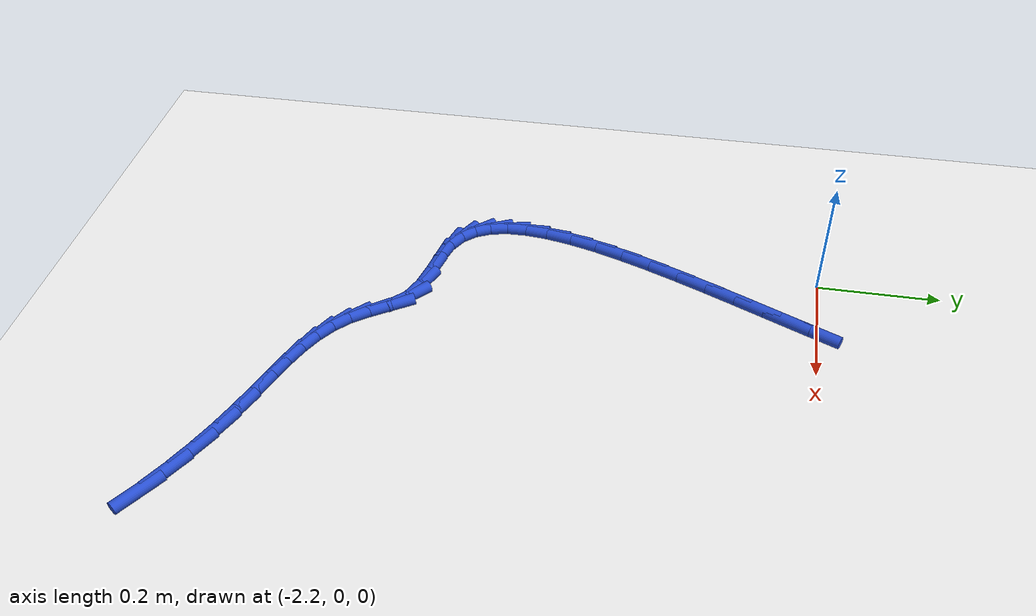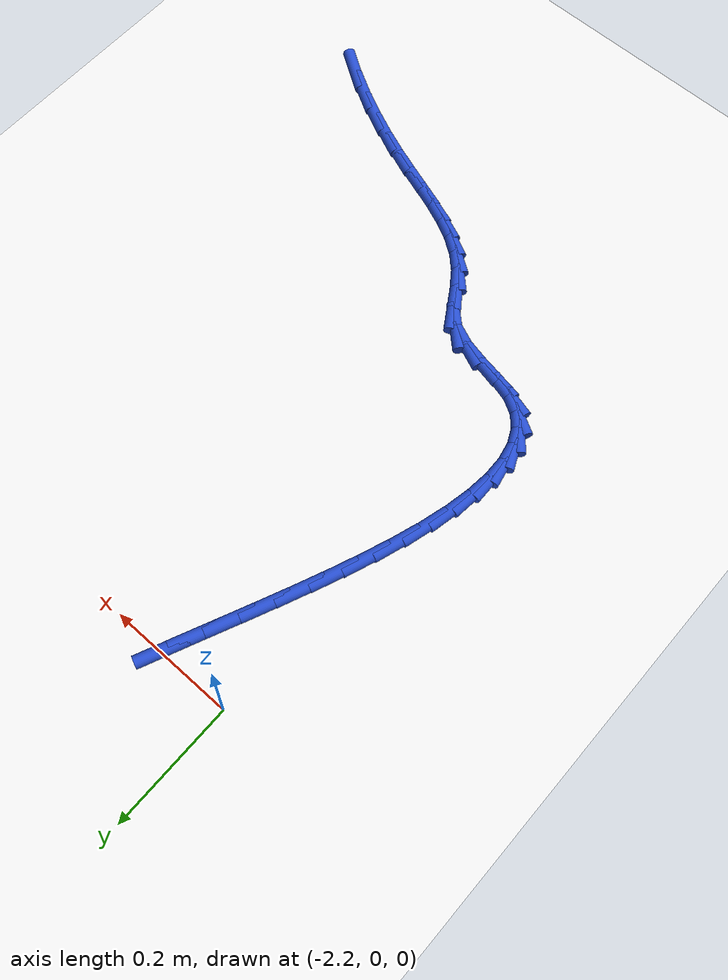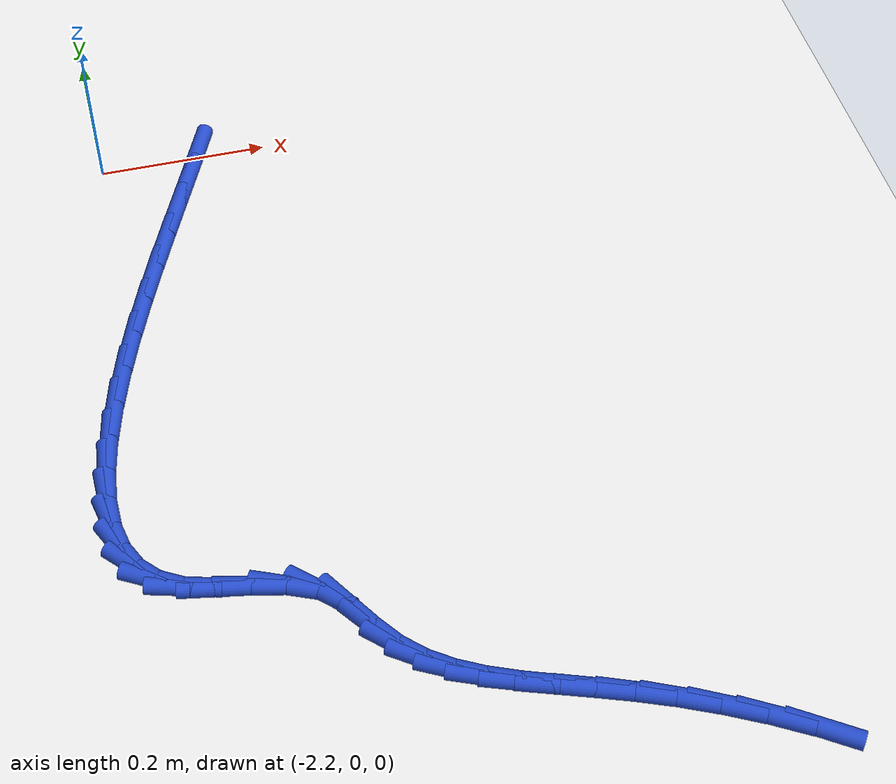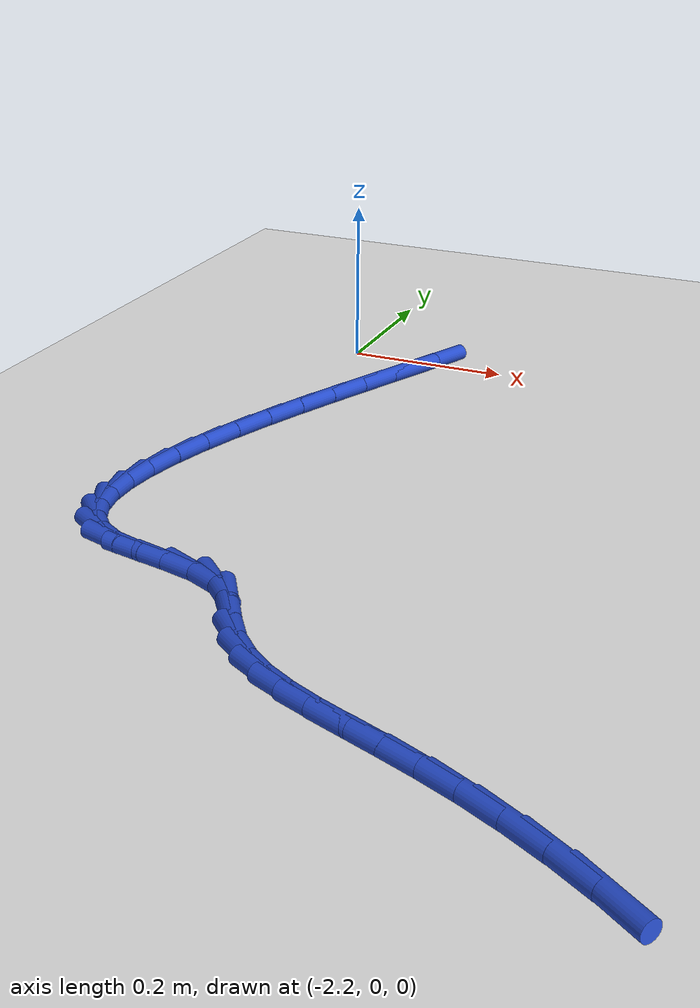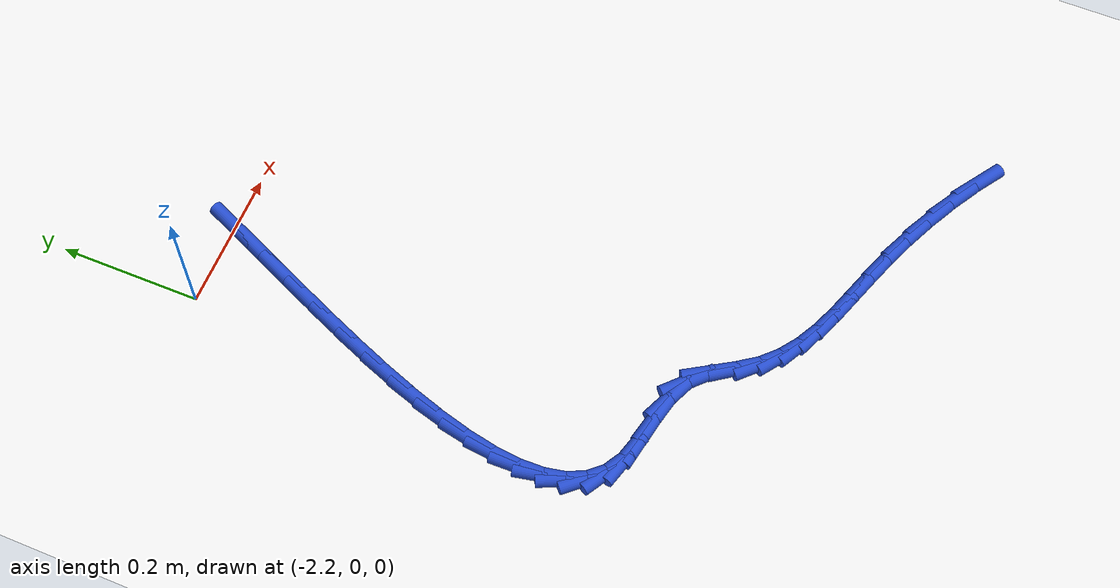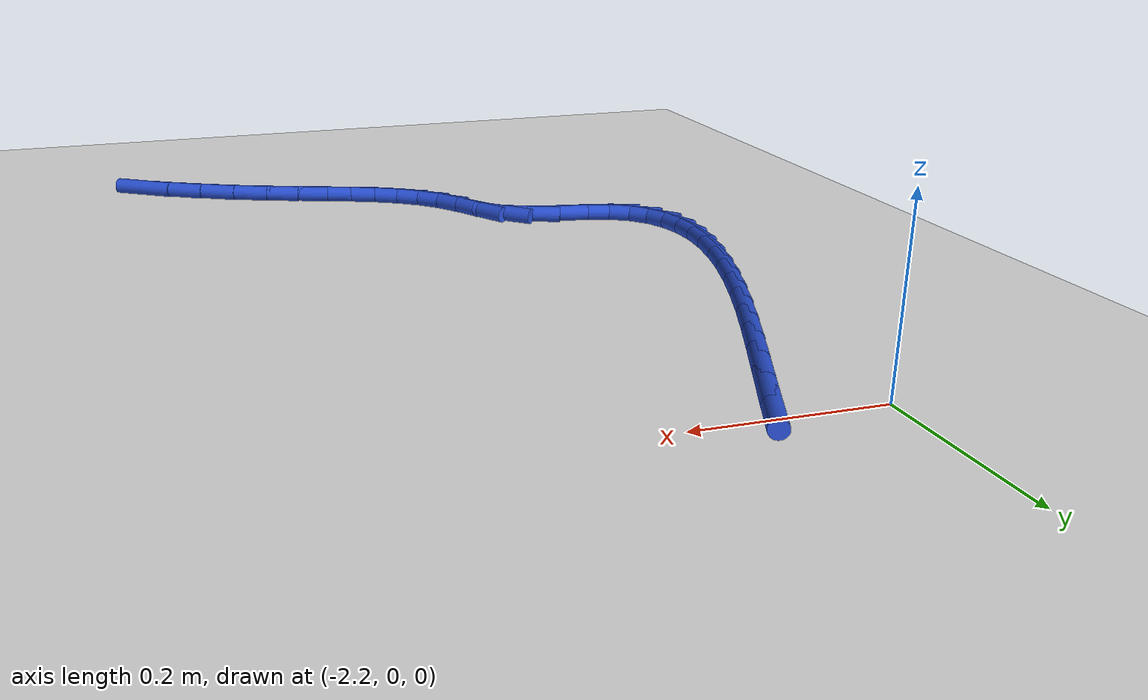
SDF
<sdf version="1.6">
 <world name="default">
  <model name="ground_plane">
   <static>1</static>
   <link name="link">
    <collision name="collision">
     <geometry><plane><normal>0 0 1</normal><size>100 100</size></plane></geometry>
     <surface><friction><ode><mu>100</mu><mu2>50</mu2></ode></friction></surface>
    </collision>
    <visual name="visual">
     <cast_shadows>0</cast_shadows>
     <geometry><plane><normal>0 0 1</normal><size>100 100</size></plane></geometry>
     <material>
      <script><uri>file://media/materials/scripts/gazebo.material</uri><name>Gazebo/WhiteGlow</name></script>
     </material>
    </visual>
   </link>
  </model>
  <model name="line">
   <link name="link_140">
    <pose>-2.081894989579881 -0.0006324446339158636 0.01 0 1.57 1.156932584206516</pose>
    <collision name="collision">
     <geometry><cylinder><radius>0.01</radius><length>0.08</length></cylinder></geometry>
    </collision>
    <visual name="visual">
     <material>
      <script><name>Gazebo/Blue</name><uri>file://media/materials/scripts/gazebo.material</uri></script>
     </material>
     <geometry><cylinder><radius>0.01</radius><length>0.08</length></cylinder></geometry>
    </visual>
   </link>
   <link name="link_141">
    <pose>-2.1021866912863536 -0.046830524819500924 0.01 0 1.57 1.1529461909608694</pose>
    <collision name="collision">
     <geometry><cylinder><radius>0.01</radius><length>0.08</length></cylinder></geometry>
    </collision>
    <visual name="visual">
     <material>
      <script><name>Gazebo/Blue</name><uri>file://media/materials/scripts/gazebo.material</uri></script>
     </material>
     <geometry><cylinder><radius>0.01</radius><length>0.08</length></cylinder></geometry>
    </visual>
   </link>
   <link name="link_142">
    <pose>-2.1232721690370724 -0.09432072351919313 0.01 0 1.57 1.1547881404584834</pose>
    <collision name="collision">
     <geometry><cylinder><radius>0.01</radius><length>0.08</length></cylinder></geometry>
    </collision>
    <visual name="visual">
     <material>
      <script><name>Gazebo/Blue</name><uri>file://media/materials/scripts/gazebo.material</uri></script>
     </material>
     <geometry><cylinder><radius>0.01</radius><length>0.08</length></cylinder></geometry>
    </visual>
   </link>
   <link name="link_143">
    <pose>-2.1446084214077388 -0.1426153887825511 0.01 0 1.57 1.1622513740539686</pose>
    <collision name="collision">
     <geometry><cylinder><radius>0.01</radius><length>0.08</length></cylinder></geometry>
    </collision>
    <visual name="visual">
     <material>
      <script><name>Gazebo/Blue</name><uri>file://media/materials/scripts/gazebo.material</uri></script>
     </material>
     <geometry><cylinder><radius>0.01</radius><length>0.08</length></cylinder></geometry>
    </visual>
   </link>
   <link name="link_144">
    <pose>-2.165652446974054 -0.19122686865913313 0.01 0 1.57 1.1755620863422374</pose>
    <collision name="collision">
     <geometry><cylinder><radius>0.01</radius><length>0.08</length></cylinder></geometry>
    </collision>
    <visual name="visual">
     <material>
      <script><name>Gazebo/Blue</name><uri>file://media/materials/scripts/gazebo.material</uri></script>
     </material>
     <geometry><cylinder><radius>0.01</radius><length>0.08</length></cylinder></geometry>
    </visual>
   </link>
   <link name="link_145">
    <pose>-2.1858612443117194 -0.23966751119849788 0.01 0 1.57 1.195393345283331</pose>
    <collision name="collision">
     <geometry><cylinder><radius>0.01</radius><length>0.08</length></cylinder></geometry>
    </collision>
    <visual name="visual">
     <material>
      <script><name>Gazebo/Blue</name><uri>file://media/materials/scripts/gazebo.material</uri></script>
     </material>
     <geometry><cylinder><radius>0.01</radius><length>0.08</length></cylinder></geometry>
    </visual>
   </link>
   <link name="link_146">
    <pose>-2.2046918119964376 -0.28744966445020514 0.01 0 1.57 1.2229576587296154</pose>
    <collision name="collision">
     <geometry><cylinder><radius>0.01</radius><length>0.08</length></cylinder></geometry>
    </collision>
    <visual name="visual">
     <material>
      <script><name>Gazebo/Blue</name><uri>file://media/materials/scripts/gazebo.material</uri></script>
     </material>
     <geometry><cylinder><radius>0.01</radius><length>0.08</length></cylinder></geometry>
    </visual>
   </link>
   <link name="link_147">
    <pose>-2.221601148603909 -0.3340856764638106 0.01 0 1.57 1.26019878514901</pose>
    <collision name="collision">
     <geometry><cylinder><radius>0.01</radius><length>0.08</length></cylinder></geometry>
    </collision>
    <visual name="visual">
     <material>
      <script><name>Gazebo/Blue</name><uri>file://media/materials/scripts/gazebo.material</uri></script>
     </material>
     <geometry><cylinder><radius>0.01</radius><length>0.08</length></cylinder></geometry>
    </visual>
   </link>
   <link name="link_148">
    <pose>-2.2360462527098344 -0.37908789528887404 0.01 0 1.57 1.3101286805255532</pose>
    <collision name="collision">
     <geometry><cylinder><radius>0.01</radius><length>0.08</length></cylinder></geometry>
    </collision>
    <visual name="visual">
     <material>
      <script><name>Gazebo/Blue</name><uri>file://media/materials/scripts/gazebo.material</uri></script>
     </material>
     <geometry><cylinder><radius>0.01</radius><length>0.08</length></cylinder></geometry>
    </visual>
   </link>
   <link name="link_149">
    <pose>-2.247484122889917 -0.421968668974954 0.01 0 1.57 1.3773841069734818</pose>
    <collision name="collision">
     <geometry><cylinder><radius>0.01</radius><length>0.08</length></cylinder></geometry>
    </collision>
    <visual name="visual">
     <material>
      <script><name>Gazebo/Blue</name><uri>file://media/materials/scripts/gazebo.material</uri></script>
     </material>
     <geometry><cylinder><radius>0.01</radius><length>0.08</length></cylinder></geometry>
    </visual>
   </link>
   <link name="link_150">
    <pose>-2.2553717577198578 -0.46224034557160903 0.01 0 1.57 1.469079838120659</pose>
    <collision name="collision">
     <geometry><cylinder><radius>0.01</radius><length>0.08</length></cylinder></geometry>
    </collision>
    <visual name="visual">
     <material>
      <script><name>Gazebo/Blue</name><uri>file://media/materials/scripts/gazebo.material</uri></script>
     </material>
     <geometry><cylinder><radius>0.01</radius><length>0.08</length></cylinder></geometry>
    </visual>
   </link>
   <link name="link_151">
    <pose>-2.259166155775358 -0.4994152731283975 0.01 0 1.57 -1.545739739605626</pose>
    <collision name="collision">
     <geometry><cylinder><radius>0.01</radius><length>0.08</length></cylinder></geometry>
    </collision>
    <visual name="visual">
     <material>
      <script><name>Gazebo/Blue</name><uri>file://media/materials/scripts/gazebo.material</uri></script>
     </material>
     <geometry><cylinder><radius>0.01</radius><length>0.08</length></cylinder></geometry>
    </visual>
   </link>
   <link name="link_152">
    <pose>-2.258324315632119 -0.5330057996948779 0.01 0 1.57 -1.369579992412249</pose>
    <collision name="collision">
     <geometry><cylinder><radius>0.01</radius><length>0.08</length></cylinder></geometry>
    </collision>
    <visual name="visual">
     <material>
      <script><name>Gazebo/Blue</name><uri>file://media/materials/scripts/gazebo.material</uri></script>
     </material>
     <geometry><cylinder><radius>0.01</radius><length>0.08</length></cylinder></geometry>
    </visual>
   </link>
   <link name="link_153">
    <pose>-2.252303235865843 -0.562524273320609 0.01 0 1.57 -1.1310187634266764</pose>
    <collision name="collision">
     <geometry><cylinder><radius>0.01</radius><length>0.08</length></cylinder></geometry>
    </collision>
    <visual name="visual">
     <material>
      <script><name>Gazebo/Blue</name><uri>file://media/materials/scripts/gazebo.material</uri></script>
     </material>
     <geometry><cylinder><radius>0.01</radius><length>0.08</length></cylinder></geometry>
    </visual>
   </link>
   <link name="link_154">
    <pose>-2.2405599150522306 -0.5874830420551489 0.01 0 1.57 -0.8355367466108276</pose>
    <collision name="collision">
     <geometry><cylinder><radius>0.01</radius><length>0.08</length></cylinder></geometry>
    </collision>
    <visual name="visual">
     <material>
      <script><name>Gazebo/Blue</name><uri>file://media/materials/scripts/gazebo.material</uri></script>
     </material>
     <geometry><cylinder><radius>0.01</radius><length>0.08</length></cylinder></geometry>
    </visual>
   </link>
   <link name="link_155">
    <pose>-2.2225513517669833 -0.6073944539480567 0.01 0 1.57 -0.5250606447240321</pose>
    <collision name="collision">
     <geometry><cylinder><radius>0.01</radius><length>0.08</length></cylinder></geometry>
    </collision>
    <visual name="visual">
     <material>
      <script><name>Gazebo/Blue</name><uri>file://media/materials/scripts/gazebo.material</uri></script>
     </material>
     <geometry><cylinder><radius>0.01</radius><length>0.08</length></cylinder></geometry>
    </visual>
   </link>
   <link name="link_156">
    <pose>-2.1977345445858036 -0.6217708570488898 0.01 0 1.57 -0.2750231705666731</pose>
    <collision name="collision">
     <geometry><cylinder><radius>0.01</radius><length>0.08</length></cylinder></geometry>
    </collision>
    <visual name="visual">
     <material>
      <script><name>Gazebo/Blue</name><uri>file://media/materials/scripts/gazebo.material</uri></script>
     </material>
     <geometry><cylinder><radius>0.01</radius><length>0.08</length></cylinder></geometry>
    </visual>
   </link>
   <link name="link_157">
    <pose>-2.1661189917447925 -0.6306919323809099 0.01 0 1.57 -0.18143963764253712</pose>
    <collision name="collision">
     <geometry><cylinder><radius>0.01</radius><length>0.08</length></cylinder></geometry>
    </collision>
    <visual name="visual">
     <material>
      <script><name>Gazebo/Blue</name><uri>file://media/materials/scripts/gazebo.material</uri></script>
     </material>
     <geometry><cylinder><radius>0.01</radius><length>0.08</length></cylinder></geometry>
    </visual>
   </link>
   <link name="link_158">
    <pose>-2.130606198030507 -0.6372070110754854 0.01 0 1.57 -0.22464571683026813</pose>
    <collision name="collision">
     <geometry><cylinder><radius>0.01</radius><length>0.08</length></cylinder></geometry>
    </collision>
    <visual name="visual">
     <material>
      <script><name>Gazebo/Blue</name><uri>file://media/materials/scripts/gazebo.material</uri></script>
     </material>
     <geometry><cylinder><radius>0.01</radius><length>0.08</length></cylinder></geometry>
    </visual>
   </link>
   <link name="link_159">
    <pose>-2.0950407351740705 -0.6453338103326287 0.01 0 1.57 -0.408601827852149</pose>
    <collision name="collision">
     <geometry><cylinder><radius>0.01</radius><length>0.08</length></cylinder></geometry>
    </collision>
    <visual name="visual">
     <material>
      <script><name>Gazebo/Blue</name><uri>file://media/materials/scripts/gazebo.material</uri></script>
     </material>
     <geometry><cylinder><radius>0.01</radius><length>0.08</length></cylinder></geometry>
    </visual>
   </link>
   <link name="link_160">
    <pose>-2.0632676947208273 -0.6590905811223601 0.01 0 1.57 -0.7602238282665572</pose>
    <collision name="collision">
     <geometry><cylinder><radius>0.01</radius><length>0.08</length></cylinder></geometry>
    </collision>
    <visual name="visual">
     <material>
      <script><name>Gazebo/Blue</name><uri>file://media/materials/scripts/gazebo.material</uri></script>
     </material>
     <geometry><cylinder><radius>0.01</radius><length>0.08</length></cylinder></geometry>
    </visual>
   </link>
   <link name="link_161">
    <pose>-2.038926825815244 -0.68223576755925 0.01 0 1.57 -1.0129824406412153</pose>
    <collision name="collision">
     <geometry><cylinder><radius>0.01</radius><length>0.08</length></cylinder></geometry>
    </collision>
    <visual name="visual">
     <material>
      <script><name>Gazebo/Blue</name><uri>file://media/materials/scripts/gazebo.material</uri></script>
     </material>
     <geometry><cylinder><radius>0.01</radius><length>0.08</length></cylinder></geometry>
    </visual>
   </link>
   <link name="link_162">
    <pose>-2.0204192488086123 -0.7118997054480583 0.01 0 1.57 -0.9519796166779706</pose>
    <collision name="collision">
     <geometry><cylinder><radius>0.01</radius><length>0.08</length></cylinder></geometry>
    </collision>
    <visual name="visual">
     <material>
      <script><name>Gazebo/Blue</name><uri>file://media/materials/scripts/gazebo.material</uri></script>
     </material>
     <geometry><cylinder><radius>0.01</radius><length>0.08</length></cylinder></geometry>
    </visual>
   </link>
   <link name="link_163">
    <pose>-2.0011295455572684 -0.7389872624343934 0.01 0 1.57 -0.777194841226604</pose>
    <collision name="collision">
     <geometry><cylinder><radius>0.01</radius><length>0.08</length></cylinder></geometry>
    </collision>
    <visual name="visual">
     <material>
      <script><name>Gazebo/Blue</name><uri>file://media/materials/scripts/gazebo.material</uri></script>
     </material>
     <geometry><cylinder><radius>0.01</radius><length>0.08</length></cylinder></geometry>
    </visual>
   </link>
   <link name="link_164">
    <pose>-1.9787865849693187 -0.7609666245735579 0.01 0 1.57 -0.6165205945067023</pose>
    <collision name="collision">
     <geometry><cylinder><radius>0.01</radius><length>0.08</length></cylinder></geometry>
    </collision>
    <visual name="visual">
     <material>
      <script><name>Gazebo/Blue</name><uri>file://media/materials/scripts/gazebo.material</uri></script>
     </material>
     <geometry><cylinder><radius>0.01</radius><length>0.08</length></cylinder></geometry>
    </visual>
   </link>
   <link name="link_165">
    <pose>-1.9535078793908562 -0.7788808661626823 0.01 0 1.57 -0.488518129624439</pose>
    <collision name="collision">
     <geometry><cylinder><radius>0.01</radius><length>0.08</length></cylinder></geometry>
    </collision>
    <visual name="visual">
     <material>
      <script><name>Gazebo/Blue</name><uri>file://media/materials/scripts/gazebo.material</uri></script>
     </material>
     <geometry><cylinder><radius>0.01</radius><length>0.08</length></cylinder></geometry>
    </visual>
   </link>
   <link name="link_166">
    <pose>-1.9254311270474793 -0.7938032720619976 0.01 0 1.57 -0.4002322959241277</pose>
    <collision name="collision">
     <geometry><cylinder><radius>0.01</radius><length>0.08</length></cylinder></geometry>
    </collision>
    <visual name="visual">
     <material>
      <script><name>Gazebo/Blue</name><uri>file://media/materials/scripts/gazebo.material</uri></script>
     </material>
     <geometry><cylinder><radius>0.01</radius><length>0.08</length></cylinder></geometry>
    </visual>
   </link>
   <link name="link_167">
    <pose>-1.8946940261647864 -0.8068071271317344 0.01 0 1.57 -0.3504730274708066</pose>
    <collision name="collision">
     <geometry><cylinder><radius>0.01</radius><length>0.08</length></cylinder></geometry>
    </collision>
    <visual name="visual">
     <material>
      <script><name>Gazebo/Blue</name><uri>file://media/materials/scripts/gazebo.material</uri></script>
     </material>
     <geometry><cylinder><radius>0.01</radius><length>0.08</length></cylinder></geometry>
    </visual>
   </link>
   <link name="link_168">
    <pose>-1.861434274968377 -0.8189657162321234 0.01 0 1.57 -0.3344477564729349</pose>
    <collision name="collision">
     <geometry><cylinder><radius>0.01</radius><length>0.08</length></cylinder></geometry>
    </collision>
    <visual name="visual">
     <material>
      <script><name>Gazebo/Blue</name><uri>file://media/materials/scripts/gazebo.material</uri></script>
     </material>
     <geometry><cylinder><radius>0.01</radius><length>0.08</length></cylinder></geometry>
    </visual>
   </link>
   <link name="link_169">
    <pose>-1.8257895716838513 -0.8313523242233954 0.01 0 1.57 -0.34664870487364485</pose>
    <collision name="collision">
     <geometry><cylinder><radius>0.01</radius><length>0.08</length></cylinder></geometry>
    </collision>
    <visual name="visual">
     <material>
      <script><name>Gazebo/Blue</name><uri>file://media/materials/scripts/gazebo.material</uri></script>
     </material>
     <geometry><cylinder><radius>0.01</radius><length>0.08</length></cylinder></geometry>
    </visual>
   </link>
   <link name="link_170">
    <pose>-1.787897614536807 -0.8450402359657806 0.01 0 1.57 -0.3818351951983678</pose>
    <collision name="collision">
     <geometry><cylinder><radius>0.01</radius><length>0.08</length></cylinder></geometry>
    </collision>
    <visual name="visual">
     <material>
      <script><name>Gazebo/Blue</name><uri>file://media/materials/scripts/gazebo.material</uri></script>
     </material>
     <geometry><cylinder><radius>0.01</radius><length>0.08</length></cylinder></geometry>
    </visual>
   </link>
   <link name="link_171">
    <pose>-1.7478963534149092 -0.8611024323449122 0.01 0 1.57 -0.43054768389969716</pose>
    <collision name="collision">
     <geometry><cylinder><radius>0.01</radius><length>0.08</length></cylinder></geometry>
    </collision>
    <visual name="visual">
     <material>
      <script><name>Gazebo/Blue</name><uri>file://media/materials/scripts/gazebo.material</uri></script>
     </material>
     <geometry><cylinder><radius>0.01</radius><length>0.08</length></cylinder></geometry>
    </visual>
   </link>
   <link name="link_172">
    <pose>-1.7062338013685718 -0.8802373788205918 0.01 0 1.57 -0.4791829772226404</pose>
    <collision name="collision">
     <geometry><cylinder><radius>0.01</radius><length>0.08</length></cylinder></geometry>
    </collision>
    <visual name="visual">
     <material>
      <script><name>Gazebo/Blue</name><uri>file://media/materials/scripts/gazebo.material</uri></script>
     </material>
     <geometry><cylinder><radius>0.01</radius><length>0.08</length></cylinder></geometry>
    </visual>
   </link>
   <link name="link_173">
    <pose>-1.6642718903797933 -0.902039647262694 0.01 0 1.57 -0.529932986943925</pose>
    <collision name="collision">
     <geometry><cylinder><radius>0.01</radius><length>0.08</length></cylinder></geometry>
    </collision>
    <visual name="visual">
     <material>
      <script><name>Gazebo/Blue</name><uri>file://media/materials/scripts/gazebo.material</uri></script>
     </material>
     <geometry><cylinder><radius>0.01</radius><length>0.08</length></cylinder></geometry>
    </visual>
   </link>
   <link name="link_174">
    <pose>-1.6235401071340467 -0.925901425547569 0.01 0 1.57 -0.5879788431227058</pose>
    <collision name="collision">
     <geometry><cylinder><radius>0.01</radius><length>0.08</length></cylinder></geometry>
    </collision>
    <visual name="visual">
     <material>
      <script><name>Gazebo/Blue</name><uri>file://media/materials/scripts/gazebo.material</uri></script>
     </material>
     <geometry><cylinder><radius>0.01</radius><length>0.08</length></cylinder></geometry>
    </visual>
   </link>
  </model>
 </world>
</sdf>
